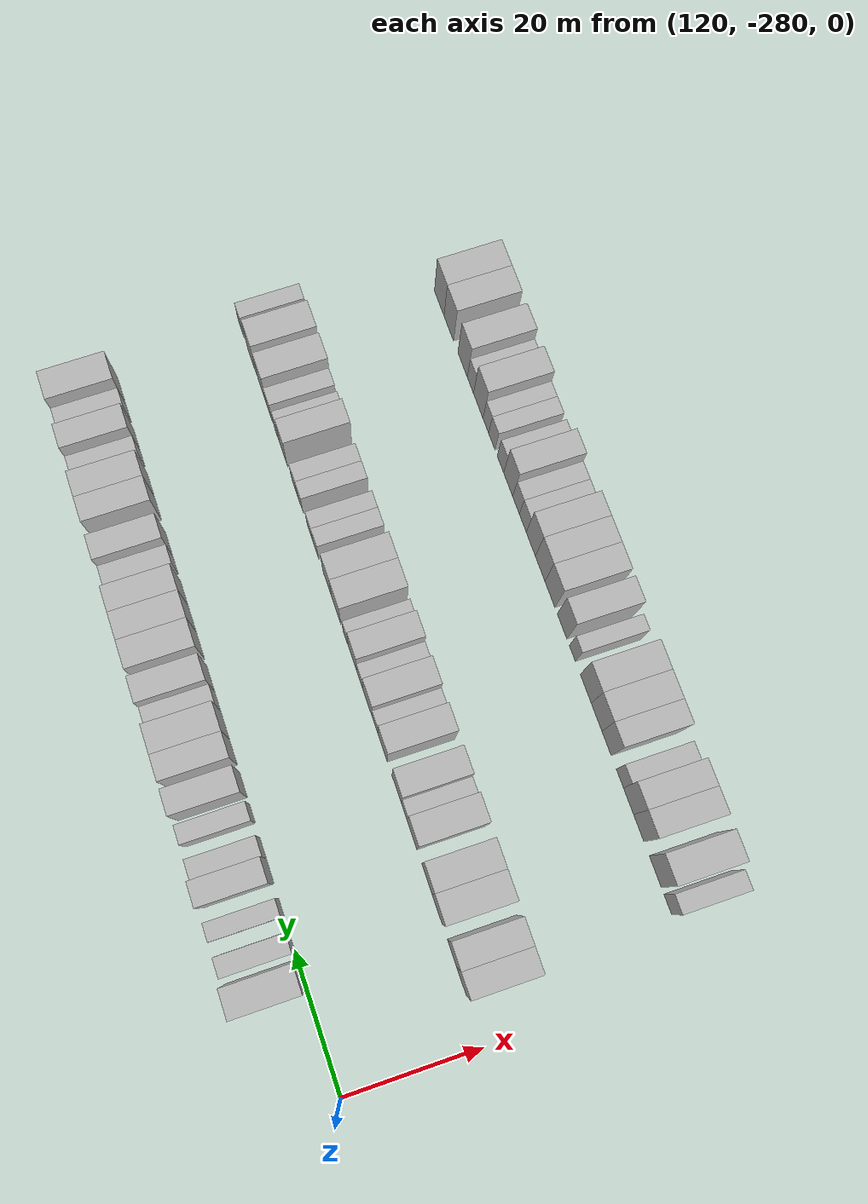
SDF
<sdf version="1.6">
 <world name="default">
  <model name="building_732">
   <static>1</static>
   <pose>115.0000 -263.3713 0 0.000000 0.000000 0.000000</pose>
   <link name="link">
    <pose>0 0 4.50 0 0 0</pose>
    <collision name="collision"><geometry><box><size>10.0000 4.2053 9.0000</size></box></geometry></collision>
    <visual name="visual">
     <cast_shadows>0</cast_shadows>
     <geometry><box><size>10.0000 4.2053 9.0000</size></box></geometry>
     <material>
      <script>
       <uri>model://HANNAS_wall/materials/scripts</uri>
       <uri>model://HANNAS_wall/materials/textures</uri>
       <name>vrc/HANNAS_wall</name>
      </script>
     </material>
    </visual>
   </link>
  </model>
  <model name="building_733">
   <static>1</static>
   <pose>115.0000 -258.8505 0 0.000000 0.000000 0.000000</pose>
   <link name="link">
    <pose>0 0 3.00 0 0 0</pose>
    <collision name="collision"><geometry><box><size>10.0000 2.8362 6.0000</size></box></geometry></collision>
    <visual name="visual">
     <cast_shadows>0</cast_shadows>
     <geometry><box><size>10.0000 2.8362 6.0000</size></box></geometry>
     <material>
      <script>
       <uri>model://HANNAS_wall/materials/scripts</uri>
       <uri>model://HANNAS_wall/materials/textures</uri>
       <name>vrc/HANNAS_wall</name>
      </script>
     </material>
    </visual>
   </link>
  </model>
  <model name="building_734">
   <static>1</static>
   <pose>115.0000 -254.1310 0 0.000000 0.000000 0.000000</pose>
   <link name="link">
    <pose>0 0 3.00 0 0 0</pose>
    <collision name="collision"><geometry><box><size>10.0000 2.6029 6.0000</size></box></geometry></collision>
    <visual name="visual">
     <cast_shadows>0</cast_shadows>
     <geometry><box><size>10.0000 2.6029 6.0000</size></box></geometry>
     <material>
      <script>
       <uri>model://HANNAS_wall/materials/scripts</uri>
       <uri>model://HANNAS_wall/materials/textures</uri>
       <name>vrc/HANNAS_wall</name>
      </script>
     </material>
    </visual>
   </link>
  </model>
  <model name="building_735">
   <static>1</static>
   <pose>115.0000 -249.0140 0 0.000000 0.000000 0.000000</pose>
   <link name="link">
    <pose>0 0 4.50 0 0 0</pose>
    <collision name="collision"><geometry><box><size>10.0000 3.6311 9.0000</size></box></geometry></collision>
    <visual name="visual">
     <cast_shadows>0</cast_shadows>
     <geometry><box><size>10.0000 3.6311 9.0000</size></box></geometry>
     <material>
      <script>
       <uri>model://HANNAS_wall/materials/scripts</uri>
       <uri>model://HANNAS_wall/materials/textures</uri>
       <name>vrc/HANNAS_wall</name>
      </script>
     </material>
    </visual>
   </link>
  </model>
  <model name="building_736">
   <static>1</static>
   <pose>115.0000 -245.7014 0 0.000000 0.000000 0.000000</pose>
   <link name="link">
    <pose>0 0 3.00 0 0 0</pose>
    <collision name="collision"><geometry><box><size>10.0000 2.9943 6.0000</size></box></geometry></collision>
    <visual name="visual">
     <cast_shadows>0</cast_shadows>
     <geometry><box><size>10.0000 2.9943 6.0000</size></box></geometry>
     <material>
      <script>
       <uri>model://HANNAS_wall/materials/scripts</uri>
       <uri>model://HANNAS_wall/materials/textures</uri>
       <name>vrc/HANNAS_wall</name>
      </script>
     </material>
    </visual>
   </link>
  </model>
  <model name="building_737">
   <static>1</static>
   <pose>115.0000 -240.8219 0 0.000000 0.000000 0.000000</pose>
   <link name="link">
    <pose>0 0 3.00 0 0 0</pose>
    <collision name="collision"><geometry><box><size>10.0000 2.7646 6.0000</size></box></geometry></collision>
    <visual name="visual">
     <cast_shadows>0</cast_shadows>
     <geometry><box><size>10.0000 2.7646 6.0000</size></box></geometry>
     <material>
      <script>
       <uri>model://HANNAS_wall/materials/scripts</uri>
       <uri>model://HANNAS_wall/materials/textures</uri>
       <name>vrc/HANNAS_wall</name>
      </script>
     </material>
    </visual>
   </link>
  </model>
  <model name="building_738">
   <static>1</static>
   <pose>115.0000 -236.5598 0 0.000000 0.000000 0.000000</pose>
   <link name="link">
    <pose>0 0 4.50 0 0 0</pose>
    <collision name="collision"><geometry><box><size>10.0000 3.7596 9.0000</size></box></geometry></collision>
    <visual name="visual">
     <cast_shadows>0</cast_shadows>
     <geometry><box><size>10.0000 3.7596 9.0000</size></box></geometry>
     <material>
      <script>
       <uri>model://HANNAS_wall/materials/scripts</uri>
       <uri>model://HANNAS_wall/materials/textures</uri>
       <name>vrc/HANNAS_wall</name>
      </script>
     </material>
    </visual>
   </link>
  </model>
  <model name="building_739">
   <static>1</static>
   <pose>115.0000 -231.7843 0 0.000000 0.000000 0.000000</pose>
   <link name="link">
    <pose>0 0 4.50 0 0 0</pose>
    <collision name="collision"><geometry><box><size>10.0000 3.7914 9.0000</size></box></geometry></collision>
    <visual name="visual">
     <cast_shadows>0</cast_shadows>
     <geometry><box><size>10.0000 3.7914 9.0000</size></box></geometry>
     <material>
      <script>
       <uri>model://HANNAS_wall/materials/scripts</uri>
       <uri>model://HANNAS_wall/materials/textures</uri>
       <name>vrc/HANNAS_wall</name>
      </script>
     </material>
    </visual>
   </link>
  </model>
  <model name="building_740">
   <static>1</static>
   <pose>115.0000 -227.7483 0 0.000000 0.000000 0.000000</pose>
   <link name="link">
    <pose>0 0 4.50 0 0 0</pose>
    <collision name="collision"><geometry><box><size>10.0000 4.2806 9.0000</size></box></geometry></collision>
    <visual name="visual">
     <cast_shadows>0</cast_shadows>
     <geometry><box><size>10.0000 4.2806 9.0000</size></box></geometry>
     <material>
      <script>
       <uri>model://HANNAS_wall/materials/scripts</uri>
       <uri>model://HANNAS_wall/materials/textures</uri>
       <name>vrc/HANNAS_wall</name>
      </script>
     </material>
    </visual>
   </link>
  </model>
  <model name="building_741">
   <static>1</static>
   <pose>115.0000 -224.1290 0 0.000000 0.000000 0.000000</pose>
   <link name="link">
    <pose>0 0 3.00 0 0 0</pose>
    <collision name="collision"><geometry><box><size>10.0000 2.9580 6.0000</size></box></geometry></collision>
    <visual name="visual">
     <cast_shadows>0</cast_shadows>
     <geometry><box><size>10.0000 2.9580 6.0000</size></box></geometry>
     <material>
      <script>
       <uri>model://HANNAS_wall/materials/scripts</uri>
       <uri>model://HANNAS_wall/materials/textures</uri>
       <name>vrc/HANNAS_wall</name>
      </script>
     </material>
    </visual>
   </link>
  </model>
  <model name="building_742">
   <static>1</static>
   <pose>115.0000 -220.6975 0 0.000000 0.000000 0.000000</pose>
   <link name="link">
    <pose>0 0 4.50 0 0 0</pose>
    <collision name="collision"><geometry><box><size>10.0000 3.9050 9.0000</size></box></geometry></collision>
    <visual name="visual">
     <cast_shadows>0</cast_shadows>
     <geometry><box><size>10.0000 3.9050 9.0000</size></box></geometry>
     <material>
      <script>
       <uri>model://HANNAS_wall/materials/scripts</uri>
       <uri>model://HANNAS_wall/materials/textures</uri>
       <name>vrc/HANNAS_wall</name>
      </script>
     </material>
    </visual>
   </link>
  </model>
  <model name="building_743">
   <static>1</static>
   <pose>115.0000 -215.6237 0 0.000000 0.000000 0.000000</pose>
   <link name="link">
    <pose>0 0 4.50 0 0 0</pose>
    <collision name="collision"><geometry><box><size>10.0000 4.2427 9.0000</size></box></geometry></collision>
    <visual name="visual">
     <cast_shadows>0</cast_shadows>
     <geometry><box><size>10.0000 4.2427 9.0000</size></box></geometry>
     <material>
      <script>
       <uri>model://HANNAS_wall/materials/scripts</uri>
       <uri>model://HANNAS_wall/materials/textures</uri>
       <name>vrc/HANNAS_wall</name>
      </script>
     </material>
    </visual>
   </link>
  </model>
  <model name="building_744">
   <static>1</static>
   <pose>115.0000 -211.4482 0 0.000000 0.000000 0.000000</pose>
   <link name="link">
    <pose>0 0 4.50 0 0 0</pose>
    <collision name="collision"><geometry><box><size>10.0000 4.1084 9.0000</size></box></geometry></collision>
    <visual name="visual">
     <cast_shadows>0</cast_shadows>
     <geometry><box><size>10.0000 4.1084 9.0000</size></box></geometry>
     <material>
      <script>
       <uri>model://HANNAS_wall/materials/scripts</uri>
       <uri>model://HANNAS_wall/materials/textures</uri>
       <name>vrc/HANNAS_wall</name>
      </script>
     </material>
    </visual>
   </link>
  </model>
  <model name="building_745">
   <static>1</static>
   <pose>115.0000 -207.4592 0 0.000000 0.000000 0.000000</pose>
   <link name="link">
    <pose>0 0 4.50 0 0 0</pose>
    <collision name="collision"><geometry><box><size>10.0000 3.8694 9.0000</size></box></geometry></collision>
    <visual name="visual">
     <cast_shadows>0</cast_shadows>
     <geometry><box><size>10.0000 3.8694 9.0000</size></box></geometry>
     <material>
      <script>
       <uri>model://HANNAS_wall/materials/scripts</uri>
       <uri>model://HANNAS_wall/materials/textures</uri>
       <name>vrc/HANNAS_wall</name>
      </script>
     </material>
    </visual>
   </link>
  </model>
  <model name="building_746">
   <static>1</static>
   <pose>115.0000 -203.0701 0 0.000000 0.000000 0.000000</pose>
   <link name="link">
    <pose>0 0 3.00 0 0 0</pose>
    <collision name="collision"><geometry><box><size>10.0000 2.9089 6.0000</size></box></geometry></collision>
    <visual name="visual">
     <cast_shadows>0</cast_shadows>
     <geometry><box><size>10.0000 2.9089 6.0000</size></box></geometry>
     <material>
      <script>
       <uri>model://HANNAS_wall/materials/scripts</uri>
       <uri>model://HANNAS_wall/materials/textures</uri>
       <name>vrc/HANNAS_wall</name>
      </script>
     </material>
    </visual>
   </link>
  </model>
  <model name="building_747">
   <static>1</static>
   <pose>115.0000 -199.7276 0 0.000000 0.000000 0.000000</pose>
   <link name="link">
    <pose>0 0 4.50 0 0 0</pose>
    <collision name="collision"><geometry><box><size>10.0000 3.7760 9.0000</size></box></geometry></collision>
    <visual name="visual">
     <cast_shadows>0</cast_shadows>
     <geometry><box><size>10.0000 3.7760 9.0000</size></box></geometry>
     <material>
      <script>
       <uri>model://HANNAS_wall/materials/scripts</uri>
       <uri>model://HANNAS_wall/materials/textures</uri>
       <name>vrc/HANNAS_wall</name>
      </script>
     </material>
    </visual>
   </link>
  </model>
  <model name="building_748">
   <static>1</static>
   <pose>115.0000 -193.9212 0 0.000000 0.000000 0.000000</pose>
   <link name="link">
    <pose>0 0 4.50 0 0 0</pose>
    <collision name="collision"><geometry><box><size>10.0000 3.8367 9.0000</size></box></geometry></collision>
    <visual name="visual">
     <cast_shadows>0</cast_shadows>
     <geometry><box><size>10.0000 3.8367 9.0000</size></box></geometry>
     <material>
      <script>
       <uri>model://HANNAS_wall/materials/scripts</uri>
       <uri>model://HANNAS_wall/materials/textures</uri>
       <name>vrc/HANNAS_wall</name>
      </script>
     </material>
    </visual>
   </link>
  </model>
  <model name="building_749">
   <static>1</static>
   <pose>115.0000 -190.0120 0 0.000000 0.000000 0.000000</pose>
   <link name="link">
    <pose>0 0 4.50 0 0 0</pose>
    <collision name="collision"><geometry><box><size>10.0000 3.9817 9.0000</size></box></geometry></collision>
    <visual name="visual">
     <cast_shadows>0</cast_shadows>
     <geometry><box><size>10.0000 3.9817 9.0000</size></box></geometry>
     <material>
      <script>
       <uri>model://HANNAS_wall/materials/scripts</uri>
       <uri>model://HANNAS_wall/materials/textures</uri>
       <name>vrc/HANNAS_wall</name>
      </script>
     </material>
    </visual>
   </link>
  </model>
  <model name="building_750">
   <static>1</static>
   <pose>115.0000 -185.7250 0 0.000000 0.000000 0.000000</pose>
   <link name="link">
    <pose>0 0 3.00 0 0 0</pose>
    <collision name="collision"><geometry><box><size>10.0000 2.5922 6.0000</size></box></geometry></collision>
    <visual name="visual">
     <cast_shadows>0</cast_shadows>
     <geometry><box><size>10.0000 2.5922 6.0000</size></box></geometry>
     <material>
      <script>
       <uri>model://HANNAS_wall/materials/scripts</uri>
       <uri>model://HANNAS_wall/materials/textures</uri>
       <name>vrc/HANNAS_wall</name>
      </script>
     </material>
    </visual>
   </link>
  </model>
  <model name="building_751">
   <static>1</static>
   <pose>115.0000 -182.5310 0 0.000000 0.000000 0.000000</pose>
   <link name="link">
    <pose>0 0 4.50 0 0 0</pose>
    <collision name="collision"><geometry><box><size>10.0000 3.7958 9.0000</size></box></geometry></collision>
    <visual name="visual">
     <cast_shadows>0</cast_shadows>
     <geometry><box><size>10.0000 3.7958 9.0000</size></box></geometry>
     <material>
      <script>
       <uri>model://HANNAS_wall/materials/scripts</uri>
       <uri>model://HANNAS_wall/materials/textures</uri>
       <name>vrc/HANNAS_wall</name>
      </script>
     </material>
    </visual>
   </link>
  </model>
  <model name="building_752">
   <static>1</static>
   <pose>115.0000 -178.1399 0 0.000000 0.000000 0.000000</pose>
   <link name="link">
    <pose>0 0 3.00 0 0 0</pose>
    <collision name="collision"><geometry><box><size>10.0000 2.9865 6.0000</size></box></geometry></collision>
    <visual name="visual">
     <cast_shadows>0</cast_shadows>
     <geometry><box><size>10.0000 2.9865 6.0000</size></box></geometry>
     <material>
      <script>
       <uri>model://HANNAS_wall/materials/scripts</uri>
       <uri>model://HANNAS_wall/materials/textures</uri>
       <name>vrc/HANNAS_wall</name>
      </script>
     </material>
    </visual>
   </link>
  </model>
  <model name="building_753">
   <static>1</static>
   <pose>115.0000 -174.4019 0 0.000000 0.000000 0.000000</pose>
   <link name="link">
    <pose>0 0 4.50 0 0 0</pose>
    <collision name="collision"><geometry><box><size>10.0000 4.4895 9.0000</size></box></geometry></collision>
    <visual name="visual">
     <cast_shadows>0</cast_shadows>
     <geometry><box><size>10.0000 4.4895 9.0000</size></box></geometry>
     <material>
      <script>
       <uri>model://HANNAS_wall/materials/scripts</uri>
       <uri>model://HANNAS_wall/materials/textures</uri>
       <name>vrc/HANNAS_wall</name>
      </script>
     </material>
    </visual>
   </link>
  </model>
  <model name="building_946">
   <static>1</static>
   <pose>145.0000 -271.0463 0 0.000000 0.000000 0.000000</pose>
   <link name="link">
    <pose>0 0 4.50 0 0 0</pose>
    <collision name="collision"><geometry><box><size>10.0000 3.7468 9.0000</size></box></geometry></collision>
    <visual name="visual">
     <cast_shadows>0</cast_shadows>
     <geometry><box><size>10.0000 3.7468 9.0000</size></box></geometry>
     <material>
      <script>
       <uri>model://HANNAS_wall/materials/scripts</uri>
       <uri>model://HANNAS_wall/materials/textures</uri>
       <name>vrc/HANNAS_wall</name>
      </script>
     </material>
    </visual>
   </link>
  </model>
  <model name="building_947">
   <static>1</static>
   <pose>145.0000 -267.2173 0 0.000000 0.000000 0.000000</pose>
   <link name="link">
    <pose>0 0 4.50 0 0 0</pose>
    <collision name="collision"><geometry><box><size>10.0000 3.9110 9.0000</size></box></geometry></collision>
    <visual name="visual">
     <cast_shadows>0</cast_shadows>
     <geometry><box><size>10.0000 3.9110 9.0000</size></box></geometry>
     <material>
      <script>
       <uri>model://HANNAS_wall/materials/scripts</uri>
       <uri>model://HANNAS_wall/materials/textures</uri>
       <name>vrc/HANNAS_wall</name>
      </script>
     </material>
    </visual>
   </link>
  </model>
  <model name="building_948">
   <static>1</static>
   <pose>145.0000 -261.1029 0 0.000000 0.000000 0.000000</pose>
   <link name="link">
    <pose>0 0 4.50 0 0 0</pose>
    <collision name="collision"><geometry><box><size>10.0000 4.3180 9.0000</size></box></geometry></collision>
    <visual name="visual">
     <cast_shadows>0</cast_shadows>
     <geometry><box><size>10.0000 4.3180 9.0000</size></box></geometry>
     <material>
      <script>
       <uri>model://HANNAS_wall/materials/scripts</uri>
       <uri>model://HANNAS_wall/materials/textures</uri>
       <name>vrc/HANNAS_wall</name>
      </script>
     </material>
    </visual>
   </link>
  </model>
  <model name="building_949">
   <static>1</static>
   <pose>145.0000 -256.8141 0 0.000000 0.000000 0.000000</pose>
   <link name="link">
    <pose>0 0 4.50 0 0 0</pose>
    <collision name="collision"><geometry><box><size>10.0000 4.2596 9.0000</size></box></geometry></collision>
    <visual name="visual">
     <cast_shadows>0</cast_shadows>
     <geometry><box><size>10.0000 4.2596 9.0000</size></box></geometry>
     <material>
      <script>
       <uri>model://HANNAS_wall/materials/scripts</uri>
       <uri>model://HANNAS_wall/materials/textures</uri>
       <name>vrc/HANNAS_wall</name>
      </script>
     </material>
    </visual>
   </link>
  </model>
  <model name="building_950">
   <static>1</static>
   <pose>145.0000 -250.5826 0 0.000000 0.000000 0.000000</pose>
   <link name="link">
    <pose>0 0 4.50 0 0 0</pose>
    <collision name="collision"><geometry><box><size>10.0000 4.2034 9.0000</size></box></geometry></collision>
    <visual name="visual">
     <cast_shadows>0</cast_shadows>
     <geometry><box><size>10.0000 4.2034 9.0000</size></box></geometry>
     <material>
      <script>
       <uri>model://HANNAS_wall/materials/scripts</uri>
       <uri>model://HANNAS_wall/materials/textures</uri>
       <name>vrc/HANNAS_wall</name>
      </script>
     </material>
    </visual>
   </link>
  </model>
  <model name="building_951">
   <static>1</static>
   <pose>145.0000 -247.2416 0 0.000000 0.000000 0.000000</pose>
   <link name="link">
    <pose>0 0 3.00 0 0 0</pose>
    <collision name="collision"><geometry><box><size>10.0000 2.4785 6.0000</size></box></geometry></collision>
    <visual name="visual">
     <cast_shadows>0</cast_shadows>
     <geometry><box><size>10.0000 2.4785 6.0000</size></box></geometry>
     <material>
      <script>
       <uri>model://HANNAS_wall/materials/scripts</uri>
       <uri>model://HANNAS_wall/materials/textures</uri>
       <name>vrc/HANNAS_wall</name>
      </script>
     </material>
    </visual>
   </link>
  </model>
  <model name="building_952">
   <static>1</static>
   <pose>145.0000 -243.9691 0 0.000000 0.000000 0.000000</pose>
   <link name="link">
    <pose>0 0 4.50 0 0 0</pose>
    <collision name="collision"><geometry><box><size>10.0000 4.0665 9.0000</size></box></geometry></collision>
    <visual name="visual">
     <cast_shadows>0</cast_shadows>
     <geometry><box><size>10.0000 4.0665 9.0000</size></box></geometry>
     <material>
      <script>
       <uri>model://HANNAS_wall/materials/scripts</uri>
       <uri>model://HANNAS_wall/materials/textures</uri>
       <name>vrc/HANNAS_wall</name>
      </script>
     </material>
    </visual>
   </link>
  </model>
  <model name="building_953">
   <static>1</static>
   <pose>145.0000 -237.9194 0 0.000000 0.000000 0.000000</pose>
   <link name="link">
    <pose>0 0 4.50 0 0 0</pose>
    <collision name="collision"><geometry><box><size>10.0000 4.0329 9.0000</size></box></geometry></collision>
    <visual name="visual">
     <cast_shadows>0</cast_shadows>
     <geometry><box><size>10.0000 4.0329 9.0000</size></box></geometry>
     <material>
      <script>
       <uri>model://HANNAS_wall/materials/scripts</uri>
       <uri>model://HANNAS_wall/materials/textures</uri>
       <name>vrc/HANNAS_wall</name>
      </script>
     </material>
    </visual>
   </link>
  </model>
  <model name="building_954">
   <static>1</static>
   <pose>145.0000 -234.5982 0 0.000000 0.000000 0.000000</pose>
   <link name="link">
    <pose>0 0 3.00 0 0 0</pose>
    <collision name="collision"><geometry><box><size>10.0000 2.6095 6.0000</size></box></geometry></collision>
    <visual name="visual">
     <cast_shadows>0</cast_shadows>
     <geometry><box><size>10.0000 2.6095 6.0000</size></box></geometry>
     <material>
      <script>
       <uri>model://HANNAS_wall/materials/scripts</uri>
       <uri>model://HANNAS_wall/materials/textures</uri>
       <name>vrc/HANNAS_wall</name>
      </script>
     </material>
    </visual>
   </link>
  </model>
  <model name="building_955">
   <static>1</static>
   <pose>145.0000 -231.2347 0 0.000000 0.000000 0.000000</pose>
   <link name="link">
    <pose>0 0 4.50 0 0 0</pose>
    <collision name="collision"><geometry><box><size>10.0000 4.1175 9.0000</size></box></geometry></collision>
    <visual name="visual">
     <cast_shadows>0</cast_shadows>
     <geometry><box><size>10.0000 4.1175 9.0000</size></box></geometry>
     <material>
      <script>
       <uri>model://HANNAS_wall/materials/scripts</uri>
       <uri>model://HANNAS_wall/materials/textures</uri>
       <name>vrc/HANNAS_wall</name>
      </script>
     </material>
    </visual>
   </link>
  </model>
  <model name="building_956">
   <static>1</static>
   <pose>145.0000 -227.8031 0 0.000000 0.000000 0.000000</pose>
   <link name="link">
    <pose>0 0 3.00 0 0 0</pose>
    <collision name="collision"><geometry><box><size>10.0000 2.7458 6.0000</size></box></geometry></collision>
    <visual name="visual">
     <cast_shadows>0</cast_shadows>
     <geometry><box><size>10.0000 2.7458 6.0000</size></box></geometry>
     <material>
      <script>
       <uri>model://HANNAS_wall/materials/scripts</uri>
       <uri>model://HANNAS_wall/materials/textures</uri>
       <name>vrc/HANNAS_wall</name>
      </script>
     </material>
    </visual>
   </link>
  </model>
  <model name="building_957">
   <static>1</static>
   <pose>145.0000 -224.4755 0 0.000000 0.000000 0.000000</pose>
   <link name="link">
    <pose>0 0 4.50 0 0 0</pose>
    <collision name="collision"><geometry><box><size>10.0000 3.9093 9.0000</size></box></geometry></collision>
    <visual name="visual">
     <cast_shadows>0</cast_shadows>
     <geometry><box><size>10.0000 3.9093 9.0000</size></box></geometry>
     <material>
      <script>
       <uri>model://HANNAS_wall/materials/scripts</uri>
       <uri>model://HANNAS_wall/materials/textures</uri>
       <name>vrc/HANNAS_wall</name>
      </script>
     </material>
    </visual>
   </link>
  </model>
  <model name="building_958">
   <static>1</static>
   <pose>145.0000 -221.2877 0 0.000000 0.000000 0.000000</pose>
   <link name="link">
    <pose>0 0 3.00 0 0 0</pose>
    <collision name="collision"><geometry><box><size>10.0000 2.4662 6.0000</size></box></geometry></collision>
    <visual name="visual">
     <cast_shadows>0</cast_shadows>
     <geometry><box><size>10.0000 2.4662 6.0000</size></box></geometry>
     <material>
      <script>
       <uri>model://HANNAS_wall/materials/scripts</uri>
       <uri>model://HANNAS_wall/materials/textures</uri>
       <name>vrc/HANNAS_wall</name>
      </script>
     </material>
    </visual>
   </link>
  </model>
  <model name="building_959">
   <static>1</static>
   <pose>145.0000 -216.8794 0 0.000000 0.000000 0.000000</pose>
   <link name="link">
    <pose>0 0 4.50 0 0 0</pose>
    <collision name="collision"><geometry><box><size>10.0000 4.3504 9.0000</size></box></geometry></collision>
    <visual name="visual">
     <cast_shadows>0</cast_shadows>
     <geometry><box><size>10.0000 4.3504 9.0000</size></box></geometry>
     <material>
      <script>
       <uri>model://HANNAS_wall/materials/scripts</uri>
       <uri>model://HANNAS_wall/materials/textures</uri>
       <name>vrc/HANNAS_wall</name>
      </script>
     </material>
    </visual>
   </link>
  </model>
  <model name="building_960">
   <static>1</static>
   <pose>145.0000 -212.7282 0 0.000000 0.000000 0.000000</pose>
   <link name="link">
    <pose>0 0 4.50 0 0 0</pose>
    <collision name="collision"><geometry><box><size>10.0000 3.9522 9.0000</size></box></geometry></collision>
    <visual name="visual">
     <cast_shadows>0</cast_shadows>
     <geometry><box><size>10.0000 3.9522 9.0000</size></box></geometry>
     <material>
      <script>
       <uri>model://HANNAS_wall/materials/scripts</uri>
       <uri>model://HANNAS_wall/materials/textures</uri>
       <name>vrc/HANNAS_wall</name>
      </script>
     </material>
    </visual>
   </link>
  </model>
  <model name="building_961">
   <static>1</static>
   <pose>145.0000 -207.3350 0 0.000000 0.000000 0.000000</pose>
   <link name="link">
    <pose>0 0 3.00 0 0 0</pose>
    <collision name="collision"><geometry><box><size>10.0000 2.8341 6.0000</size></box></geometry></collision>
    <visual name="visual">
     <cast_shadows>0</cast_shadows>
     <geometry><box><size>10.0000 2.8341 6.0000</size></box></geometry>
     <material>
      <script>
       <uri>model://HANNAS_wall/materials/scripts</uri>
       <uri>model://HANNAS_wall/materials/textures</uri>
       <name>vrc/HANNAS_wall</name>
      </script>
     </material>
    </visual>
   </link>
  </model>
  <model name="building_962">
   <static>1</static>
   <pose>145.0000 -204.6130 0 0.000000 0.000000 0.000000</pose>
   <link name="link">
    <pose>0 0 3.00 0 0 0</pose>
    <collision name="collision"><geometry><box><size>10.0000 2.6100 6.0000</size></box></geometry></collision>
    <visual name="visual">
     <cast_shadows>0</cast_shadows>
     <geometry><box><size>10.0000 2.6100 6.0000</size></box></geometry>
     <material>
      <script>
       <uri>model://HANNAS_wall/materials/scripts</uri>
       <uri>model://HANNAS_wall/materials/textures</uri>
       <name>vrc/HANNAS_wall</name>
      </script>
     </material>
    </visual>
   </link>
  </model>
  <model name="building_963">
   <static>1</static>
   <pose>145.0000 -199.9300 0 0.000000 0.000000 0.000000</pose>
   <link name="link">
    <pose>0 0 3.00 0 0 0</pose>
    <collision name="collision"><geometry><box><size>10.0000 2.7559 6.0000</size></box></geometry></collision>
    <visual name="visual">
     <cast_shadows>0</cast_shadows>
     <geometry><box><size>10.0000 2.7559 6.0000</size></box></geometry>
     <material>
      <script>
       <uri>model://HANNAS_wall/materials/scripts</uri>
       <uri>model://HANNAS_wall/materials/textures</uri>
       <name>vrc/HANNAS_wall</name>
      </script>
     </material>
    </visual>
   </link>
  </model>
  <model name="building_964">
   <static>1</static>
   <pose>145.0000 -197.1475 0 0.000000 0.000000 0.000000</pose>
   <link name="link">
    <pose>0 0 3.00 0 0 0</pose>
    <collision name="collision"><geometry><box><size>10.0000 2.8092 6.0000</size></box></geometry></collision>
    <visual name="visual">
     <cast_shadows>0</cast_shadows>
     <geometry><box><size>10.0000 2.8092 6.0000</size></box></geometry>
     <material>
      <script>
       <uri>model://HANNAS_wall/materials/scripts</uri>
       <uri>model://HANNAS_wall/materials/textures</uri>
       <name>vrc/HANNAS_wall</name>
      </script>
     </material>
    </visual>
   </link>
  </model>
  <model name="building_965">
   <static>1</static>
   <pose>145.0000 -191.8414 0 0.000000 0.000000 0.000000</pose>
   <link name="link">
    <pose>0 0 4.50 0 0 0</pose>
    <collision name="collision"><geometry><box><size>10.0000 3.8029 9.0000</size></box></geometry></collision>
    <visual name="visual">
     <cast_shadows>0</cast_shadows>
     <geometry><box><size>10.0000 3.8029 9.0000</size></box></geometry>
     <material>
      <script>
       <uri>model://HANNAS_wall/materials/scripts</uri>
       <uri>model://HANNAS_wall/materials/textures</uri>
       <name>vrc/HANNAS_wall</name>
      </script>
     </material>
    </visual>
   </link>
  </model>
  <model name="building_966">
   <static>1</static>
   <pose>145.0000 -188.6117 0 0.000000 0.000000 0.000000</pose>
   <link name="link">
    <pose>0 0 3.00 0 0 0</pose>
    <collision name="collision"><geometry><box><size>10.0000 2.6565 6.0000</size></box></geometry></collision>
    <visual name="visual">
     <cast_shadows>0</cast_shadows>
     <geometry><box><size>10.0000 2.6565 6.0000</size></box></geometry>
     <material>
      <script>
       <uri>model://HANNAS_wall/materials/scripts</uri>
       <uri>model://HANNAS_wall/materials/textures</uri>
       <name>vrc/HANNAS_wall</name>
      </script>
     </material>
    </visual>
   </link>
  </model>
  <model name="building_967">
   <static>1</static>
   <pose>145.0000 -184.8637 0 0.000000 0.000000 0.000000</pose>
   <link name="link">
    <pose>0 0 3.00 0 0 0</pose>
    <collision name="collision"><geometry><box><size>10.0000 2.8395 6.0000</size></box></geometry></collision>
    <visual name="visual">
     <cast_shadows>0</cast_shadows>
     <geometry><box><size>10.0000 2.8395 6.0000</size></box></geometry>
     <material>
      <script>
       <uri>model://HANNAS_wall/materials/scripts</uri>
       <uri>model://HANNAS_wall/materials/textures</uri>
       <name>vrc/HANNAS_wall</name>
      </script>
     </material>
    </visual>
   </link>
  </model>
  <model name="building_968">
   <static>1</static>
   <pose>145.0000 -181.3198 0 0.000000 0.000000 0.000000</pose>
   <link name="link">
    <pose>0 0 4.50 0 0 0</pose>
    <collision name="collision"><geometry><box><size>10.0000 4.2483 9.0000</size></box></geometry></collision>
    <visual name="visual">
     <cast_shadows>0</cast_shadows>
     <geometry><box><size>10.0000 4.2483 9.0000</size></box></geometry>
     <material>
      <script>
       <uri>model://HANNAS_wall/materials/scripts</uri>
       <uri>model://HANNAS_wall/materials/textures</uri>
       <name>vrc/HANNAS_wall</name>
      </script>
     </material>
    </visual>
   </link>
  </model>
  <model name="building_969">
   <static>1</static>
   <pose>145.0000 -175.9856 0 0.000000 0.000000 0.000000</pose>
   <link name="link">
    <pose>0 0 4.50 0 0 0</pose>
    <collision name="collision"><geometry><box><size>10.0000 4.4202 9.0000</size></box></geometry></collision>
    <visual name="visual">
     <cast_shadows>0</cast_shadows>
     <geometry><box><size>10.0000 4.4202 9.0000</size></box></geometry>
     <material>
      <script>
       <uri>model://HANNAS_wall/materials/scripts</uri>
       <uri>model://HANNAS_wall/materials/textures</uri>
       <name>vrc/HANNAS_wall</name>
      </script>
     </material>
    </visual>
   </link>
  </model>
  <model name="building_970">
   <static>1</static>
   <pose>145.0000 -170.4820 0 0.000000 0.000000 0.000000</pose>
   <link name="link">
    <pose>0 0 3.00 0 0 0</pose>
    <collision name="collision"><geometry><box><size>10.0000 2.5870 6.0000</size></box></geometry></collision>
    <visual name="visual">
     <cast_shadows>0</cast_shadows>
     <geometry><box><size>10.0000 2.5870 6.0000</size></box></geometry>
     <material>
      <script>
       <uri>model://HANNAS_wall/materials/scripts</uri>
       <uri>model://HANNAS_wall/materials/textures</uri>
       <name>vrc/HANNAS_wall</name>
      </script>
     </material>
    </visual>
   </link>
  </model>
  <model name="building_1175">
   <static>1</static>
   <pose>175.0000 -270.4811 0 0.000000 0.000000 0.000000</pose>
   <link name="link">
    <pose>0 0 3.00 0 0 0</pose>
    <collision name="collision"><geometry><box><size>10.0000 2.8402 6.0000</size></box></geometry></collision>
    <visual name="visual">
     <cast_shadows>0</cast_shadows>
     <geometry><box><size>10.0000 2.8402 6.0000</size></box></geometry>
     <material>
      <script>
       <uri>model://HANNAS_wall/materials/scripts</uri>
       <uri>model://HANNAS_wall/materials/textures</uri>
       <name>vrc/HANNAS_wall</name>
      </script>
     </material>
    </visual>
   </link>
  </model>
  <model name="building_1176">
   <static>1</static>
   <pose>175.0000 -265.8409 0 0.000000 0.000000 0.000000</pose>
   <link name="link">
    <pose>0 0 4.50 0 0 0</pose>
    <collision name="collision"><geometry><box><size>10.0000 4.4401 9.0000</size></box></geometry></collision>
    <visual name="visual">
     <cast_shadows>0</cast_shadows>
     <geometry><box><size>10.0000 4.4401 9.0000</size></box></geometry>
     <material>
      <script>
       <uri>model://HANNAS_wall/materials/scripts</uri>
       <uri>model://HANNAS_wall/materials/textures</uri>
       <name>vrc/HANNAS_wall</name>
      </script>
     </material>
    </visual>
   </link>
  </model>
  <model name="building_1177">
   <static>1</static>
   <pose>175.0000 -259.6550 0 0.000000 0.000000 0.000000</pose>
   <link name="link">
    <pose>0 0 4.50 0 0 0</pose>
    <collision name="collision"><geometry><box><size>10.0000 3.9318 9.0000</size></box></geometry></collision>
    <visual name="visual">
     <cast_shadows>0</cast_shadows>
     <geometry><box><size>10.0000 3.9318 9.0000</size></box></geometry>
     <material>
      <script>
       <uri>model://HANNAS_wall/materials/scripts</uri>
       <uri>model://HANNAS_wall/materials/textures</uri>
       <name>vrc/HANNAS_wall</name>
      </script>
     </material>
    </visual>
   </link>
  </model>
  <model name="building_1178">
   <static>1</static>
   <pose>175.0000 -255.7464 0 0.000000 0.000000 0.000000</pose>
   <link name="link">
    <pose>0 0 4.50 0 0 0</pose>
    <collision name="collision"><geometry><box><size>10.0000 3.8854 9.0000</size></box></geometry></collision>
    <visual name="visual">
     <cast_shadows>0</cast_shadows>
     <geometry><box><size>10.0000 3.8854 9.0000</size></box></geometry>
     <material>
      <script>
       <uri>model://HANNAS_wall/materials/scripts</uri>
       <uri>model://HANNAS_wall/materials/textures</uri>
       <name>vrc/HANNAS_wall</name>
      </script>
     </material>
    </visual>
   </link>
  </model>
  <model name="building_1179">
   <static>1</static>
   <pose>175.0000 -252.4349 0 0.000000 0.000000 0.000000</pose>
   <link name="link">
    <pose>0 0 3.00 0 0 0</pose>
    <collision name="collision"><geometry><box><size>10.0000 2.7377 6.0000</size></box></geometry></collision>
    <visual name="visual">
     <cast_shadows>0</cast_shadows>
     <geometry><box><size>10.0000 2.7377 6.0000</size></box></geometry>
     <material>
      <script>
       <uri>model://HANNAS_wall/materials/scripts</uri>
       <uri>model://HANNAS_wall/materials/textures</uri>
       <name>vrc/HANNAS_wall</name>
      </script>
     </material>
    </visual>
   </link>
  </model>
  <model name="building_1180">
   <static>1</static>
   <pose>175.0000 -247.2494 0 0.000000 0.000000 0.000000</pose>
   <link name="link">
    <pose>0 0 4.50 0 0 0</pose>
    <collision name="collision"><geometry><box><size>10.0000 3.6332 9.0000</size></box></geometry></collision>
    <visual name="visual">
     <cast_shadows>0</cast_shadows>
     <geometry><box><size>10.0000 3.6332 9.0000</size></box></geometry>
     <material>
      <script>
       <uri>model://HANNAS_wall/materials/scripts</uri>
       <uri>model://HANNAS_wall/materials/textures</uri>
       <name>vrc/HANNAS_wall</name>
      </script>
     </material>
    </visual>
   </link>
  </model>
  <model name="building_1181">
   <static>1</static>
   <pose>175.0000 -243.3328 0 0.000000 0.000000 0.000000</pose>
   <link name="link">
    <pose>0 0 4.50 0 0 0</pose>
    <collision name="collision"><geometry><box><size>10.0000 4.2000 9.0000</size></box></geometry></collision>
    <visual name="visual">
     <cast_shadows>0</cast_shadows>
     <geometry><box><size>10.0000 4.2000 9.0000</size></box></geometry>
     <material>
      <script>
       <uri>model://HANNAS_wall/materials/scripts</uri>
       <uri>model://HANNAS_wall/materials/textures</uri>
       <name>vrc/HANNAS_wall</name>
      </script>
     </material>
    </visual>
   </link>
  </model>
  <model name="building_1182">
   <static>1</static>
   <pose>175.0000 -239.0391 0 0.000000 0.000000 0.000000</pose>
   <link name="link">
    <pose>0 0 4.50 0 0 0</pose>
    <collision name="collision"><geometry><box><size>10.0000 4.3873 9.0000</size></box></geometry></collision>
    <visual name="visual">
     <cast_shadows>0</cast_shadows>
     <geometry><box><size>10.0000 4.3873 9.0000</size></box></geometry>
     <material>
      <script>
       <uri>model://HANNAS_wall/materials/scripts</uri>
       <uri>model://HANNAS_wall/materials/textures</uri>
       <name>vrc/HANNAS_wall</name>
      </script>
     </material>
    </visual>
   </link>
  </model>
  <model name="building_1183">
   <static>1</static>
   <pose>175.0000 -233.6192 0 0.000000 0.000000 0.000000</pose>
   <link name="link">
    <pose>0 0 3.00 0 0 0</pose>
    <collision name="collision"><geometry><box><size>10.0000 2.4524 6.0000</size></box></geometry></collision>
    <visual name="visual">
     <cast_shadows>0</cast_shadows>
     <geometry><box><size>10.0000 2.4524 6.0000</size></box></geometry>
     <material>
      <script>
       <uri>model://HANNAS_wall/materials/scripts</uri>
       <uri>model://HANNAS_wall/materials/textures</uri>
       <name>vrc/HANNAS_wall</name>
      </script>
     </material>
    </visual>
   </link>
  </model>
  <model name="building_1184">
   <static>1</static>
   <pose>175.0000 -229.4381 0 0.000000 0.000000 0.000000</pose>
   <link name="link">
    <pose>0 0 4.50 0 0 0</pose>
    <collision name="collision"><geometry><box><size>10.0000 3.9096 9.0000</size></box></geometry></collision>
    <visual name="visual">
     <cast_shadows>0</cast_shadows>
     <geometry><box><size>10.0000 3.9096 9.0000</size></box></geometry>
     <material>
      <script>
       <uri>model://HANNAS_wall/materials/scripts</uri>
       <uri>model://HANNAS_wall/materials/textures</uri>
       <name>vrc/HANNAS_wall</name>
      </script>
     </material>
    </visual>
   </link>
  </model>
  <model name="building_1185">
   <static>1</static>
   <pose>175.0000 -224.4269 0 0.000000 0.000000 0.000000</pose>
   <link name="link">
    <pose>0 0 4.50 0 0 0</pose>
    <collision name="collision"><geometry><box><size>10.0000 4.1128 9.0000</size></box></geometry></collision>
    <visual name="visual">
     <cast_shadows>0</cast_shadows>
     <geometry><box><size>10.0000 4.1128 9.0000</size></box></geometry>
     <material>
      <script>
       <uri>model://HANNAS_wall/materials/scripts</uri>
       <uri>model://HANNAS_wall/materials/textures</uri>
       <name>vrc/HANNAS_wall</name>
      </script>
     </material>
    </visual>
   </link>
  </model>
  <model name="building_1186">
   <static>1</static>
   <pose>175.0000 -220.3585 0 0.000000 0.000000 0.000000</pose>
   <link name="link">
    <pose>0 0 4.50 0 0 0</pose>
    <collision name="collision"><geometry><box><size>10.0000 4.0242 9.0000</size></box></geometry></collision>
    <visual name="visual">
     <cast_shadows>0</cast_shadows>
     <geometry><box><size>10.0000 4.0242 9.0000</size></box></geometry>
     <material>
      <script>
       <uri>model://HANNAS_wall/materials/scripts</uri>
       <uri>model://HANNAS_wall/materials/textures</uri>
       <name>vrc/HANNAS_wall</name>
      </script>
     </material>
    </visual>
   </link>
  </model>
  <model name="building_1187">
   <static>1</static>
   <pose>175.0000 -216.4391 0 0.000000 0.000000 0.000000</pose>
   <link name="link">
    <pose>0 0 4.50 0 0 0</pose>
    <collision name="collision"><geometry><box><size>10.0000 3.8146 9.0000</size></box></geometry></collision>
    <visual name="visual">
     <cast_shadows>0</cast_shadows>
     <geometry><box><size>10.0000 3.8146 9.0000</size></box></geometry>
     <material>
      <script>
       <uri>model://HANNAS_wall/materials/scripts</uri>
       <uri>model://HANNAS_wall/materials/textures</uri>
       <name>vrc/HANNAS_wall</name>
      </script>
     </material>
    </visual>
   </link>
  </model>
  <model name="building_1188">
   <static>1</static>
   <pose>175.0000 -213.0420 0 0.000000 0.000000 0.000000</pose>
   <link name="link">
    <pose>0 0 3.00 0 0 0</pose>
    <collision name="collision"><geometry><box><size>10.0000 2.9796 6.0000</size></box></geometry></collision>
    <visual name="visual">
     <cast_shadows>0</cast_shadows>
     <geometry><box><size>10.0000 2.9796 6.0000</size></box></geometry>
     <material>
      <script>
       <uri>model://HANNAS_wall/materials/scripts</uri>
       <uri>model://HANNAS_wall/materials/textures</uri>
       <name>vrc/HANNAS_wall</name>
      </script>
     </material>
    </visual>
   </link>
  </model>
  <model name="building_1189">
   <static>1</static>
   <pose>175.0000 -210.1253 0 0.000000 0.000000 0.000000</pose>
   <link name="link">
    <pose>0 0 3.00 0 0 0</pose>
    <collision name="collision"><geometry><box><size>10.0000 2.8539 6.0000</size></box></geometry></collision>
    <visual name="visual">
     <cast_shadows>0</cast_shadows>
     <geometry><box><size>10.0000 2.8539 6.0000</size></box></geometry>
     <material>
      <script>
       <uri>model://HANNAS_wall/materials/scripts</uri>
       <uri>model://HANNAS_wall/materials/textures</uri>
       <name>vrc/HANNAS_wall</name>
      </script>
     </material>
    </visual>
   </link>
  </model>
  <model name="building_1190">
   <static>1</static>
   <pose>175.0000 -206.7459 0 0.000000 0.000000 0.000000</pose>
   <link name="link">
    <pose>0 0 4.50 0 0 0</pose>
    <collision name="collision"><geometry><box><size>10.0000 3.9048 9.0000</size></box></geometry></collision>
    <visual name="visual">
     <cast_shadows>0</cast_shadows>
     <geometry><box><size>10.0000 3.9048 9.0000</size></box></geometry>
     <material>
      <script>
       <uri>model://HANNAS_wall/materials/scripts</uri>
       <uri>model://HANNAS_wall/materials/textures</uri>
       <name>vrc/HANNAS_wall</name>
      </script>
     </material>
    </visual>
   </link>
  </model>
  <model name="building_1191">
   <static>1</static>
   <pose>175.0000 -203.3896 0 0.000000 0.000000 0.000000</pose>
   <link name="link">
    <pose>0 0 3.00 0 0 0</pose>
    <collision name="collision"><geometry><box><size>10.0000 2.8077 6.0000</size></box></geometry></collision>
    <visual name="visual">
     <cast_shadows>0</cast_shadows>
     <geometry><box><size>10.0000 2.8077 6.0000</size></box></geometry>
     <material>
      <script>
       <uri>model://HANNAS_wall/materials/scripts</uri>
       <uri>model://HANNAS_wall/materials/textures</uri>
       <name>vrc/HANNAS_wall</name>
      </script>
     </material>
    </visual>
   </link>
  </model>
  <model name="building_1192">
   <static>1</static>
   <pose>175.0000 -199.6001 0 0.000000 0.000000 0.000000</pose>
   <link name="link">
    <pose>0 0 3.00 0 0 0</pose>
    <collision name="collision"><geometry><box><size>10.0000 2.7714 6.0000</size></box></geometry></collision>
    <visual name="visual">
     <cast_shadows>0</cast_shadows>
     <geometry><box><size>10.0000 2.7714 6.0000</size></box></geometry>
     <material>
      <script>
       <uri>model://HANNAS_wall/materials/scripts</uri>
       <uri>model://HANNAS_wall/materials/textures</uri>
       <name>vrc/HANNAS_wall</name>
      </script>
     </material>
    </visual>
   </link>
  </model>
  <model name="building_1193">
   <static>1</static>
   <pose>175.0000 -196.9571 0 0.000000 0.000000 0.000000</pose>
   <link name="link">
    <pose>0 0 3.00 0 0 0</pose>
    <collision name="collision"><geometry><box><size>10.0000 2.5146 6.0000</size></box></geometry></collision>
    <visual name="visual">
     <cast_shadows>0</cast_shadows>
     <geometry><box><size>10.0000 2.5146 6.0000</size></box></geometry>
     <material>
      <script>
       <uri>model://HANNAS_wall/materials/scripts</uri>
       <uri>model://HANNAS_wall/materials/textures</uri>
       <name>vrc/HANNAS_wall</name>
      </script>
     </material>
    </visual>
   </link>
  </model>
  <model name="building_1194">
   <static>1</static>
   <pose>175.0000 -193.5922 0 0.000000 0.000000 0.000000</pose>
   <link name="link">
    <pose>0 0 4.50 0 0 0</pose>
    <collision name="collision"><geometry><box><size>10.0000 4.2153 9.0000</size></box></geometry></collision>
    <visual name="visual">
     <cast_shadows>0</cast_shadows>
     <geometry><box><size>10.0000 4.2153 9.0000</size></box></geometry>
     <material>
      <script>
       <uri>model://HANNAS_wall/materials/scripts</uri>
       <uri>model://HANNAS_wall/materials/textures</uri>
       <name>vrc/HANNAS_wall</name>
      </script>
     </material>
    </visual>
   </link>
  </model>
  <model name="building_1195">
   <static>1</static>
   <pose>175.0000 -190.0845 0 0.000000 0.000000 0.000000</pose>
   <link name="link">
    <pose>0 0 3.00 0 0 0</pose>
    <collision name="collision"><geometry><box><size>10.0000 2.7999 6.0000</size></box></geometry></collision>
    <visual name="visual">
     <cast_shadows>0</cast_shadows>
     <geometry><box><size>10.0000 2.7999 6.0000</size></box></geometry>
     <material>
      <script>
       <uri>model://HANNAS_wall/materials/scripts</uri>
       <uri>model://HANNAS_wall/materials/textures</uri>
       <name>vrc/HANNAS_wall</name>
      </script>
     </material>
    </visual>
   </link>
  </model>
  <model name="building_1196">
   <static>1</static>
   <pose>175.0000 -186.5395 0 0.000000 0.000000 0.000000</pose>
   <link name="link">
    <pose>0 0 4.50 0 0 0</pose>
    <collision name="collision"><geometry><box><size>10.0000 4.2902 9.0000</size></box></geometry></collision>
    <visual name="visual">
     <cast_shadows>0</cast_shadows>
     <geometry><box><size>10.0000 4.2902 9.0000</size></box></geometry>
     <material>
      <script>
       <uri>model://HANNAS_wall/materials/scripts</uri>
       <uri>model://HANNAS_wall/materials/textures</uri>
       <name>vrc/HANNAS_wall</name>
      </script>
     </material>
    </visual>
   </link>
  </model>
  <model name="building_1197">
   <static>1</static>
   <pose>175.0000 -180.2095 0 0.000000 0.000000 0.000000</pose>
   <link name="link">
    <pose>0 0 4.50 0 0 0</pose>
    <collision name="collision"><geometry><box><size>10.0000 4.3698 9.0000</size></box></geometry></collision>
    <visual name="visual">
     <cast_shadows>0</cast_shadows>
     <geometry><box><size>10.0000 4.3698 9.0000</size></box></geometry>
     <material>
      <script>
       <uri>model://HANNAS_wall/materials/scripts</uri>
       <uri>model://HANNAS_wall/materials/textures</uri>
       <name>vrc/HANNAS_wall</name>
      </script>
     </material>
    </visual>
   </link>
  </model>
  <model name="building_1198">
   <static>1</static>
   <pose>175.0000 -175.8118 0 0.000000 0.000000 0.000000</pose>
   <link name="link">
    <pose>0 0 4.50 0 0 0</pose>
    <collision name="collision"><geometry><box><size>10.0000 4.4257 9.0000</size></box></geometry></collision>
    <visual name="visual">
     <cast_shadows>0</cast_shadows>
     <geometry><box><size>10.0000 4.4257 9.0000</size></box></geometry>
     <material>
      <script>
       <uri>model://HANNAS_wall/materials/scripts</uri>
       <uri>model://HANNAS_wall/materials/textures</uri>
       <name>vrc/HANNAS_wall</name>
      </script>
     </material>
    </visual>
   </link>
  </model>
 </world>
</sdf>
